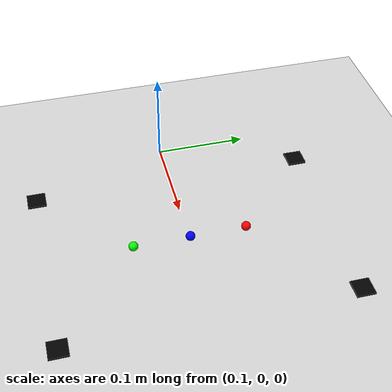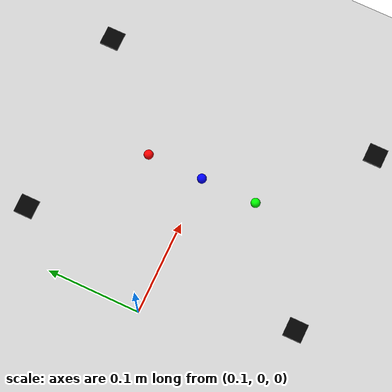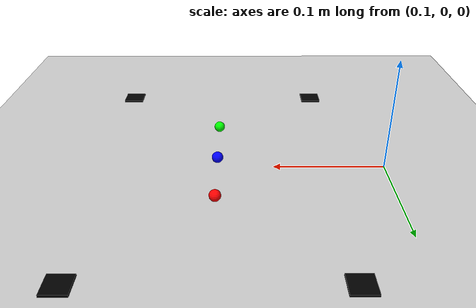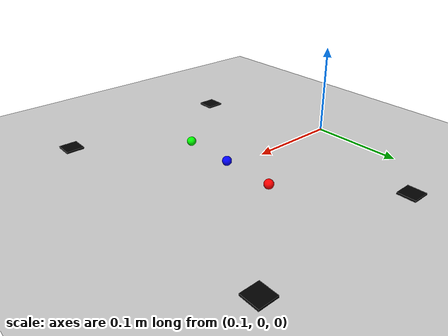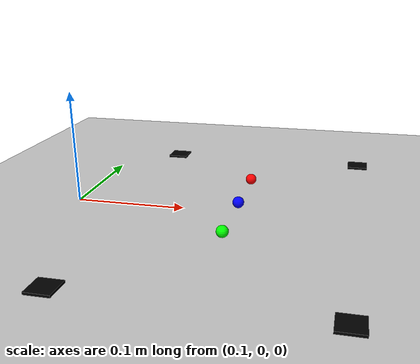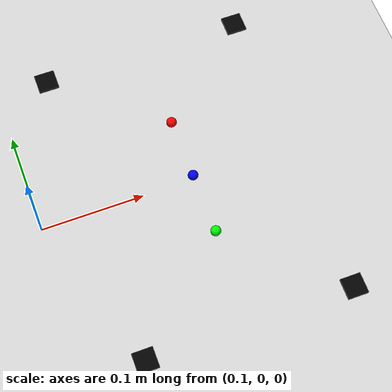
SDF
<sdf version='1.10'>
  <world name='empty'>
    <physics name='1ms' type='ignored'>
      <max_step_size>0.001</max_step_size>
      <real_time_factor>1</real_time_factor>
      <real_time_update_rate>1000</real_time_update_rate>
    </physics>
    <plugin
        filename="gz-sim-physics-system"
        name="gz::sim::systems::Physics">
    </plugin>
    <plugin
        filename="gz-sim-user-commands-system"
        name="gz::sim::systems::UserCommands">
    </plugin>
    <plugin
        filename="gz-sim-scene-broadcaster-system"
        name="gz::sim::systems::SceneBroadcaster">
    </plugin>
    <plugin
        filename="gz-sim-sensors-system"
        name="gz::sim::systems::Sensors">
    </plugin>
    <plugin
        filename="gz-sim-imu-system"
        name="gz::sim::systems::Imu">
    </plugin>
    <plugin filename="gz-sim-vacuum-gripper-system" name="gz::sim::systems::VacuumGripper">
      <parent_link>end_effector</parent_link>
      <grip_count>3</grip_count>
      <max_velocity>0.5</max_velocity>
    </plugin>
    <gravity>0 0 -9.8000000000000007</gravity>
    <magnetic_field>5.5644999999999998e-06 2.2875799999999999e-05 -4.2388400000000002e-05</magnetic_field>
    <atmosphere type='adiabatic'/>
    <scene>
      <ambient>0.400000006 0.400000006 0.400000006 1</ambient>
      <background>0.699999988 0.699999988 0.699999988 1</background>
      <shadows>true</shadows>
    </scene>
    <model name='ground_plane'>
      <static>true</static>
      <link name='link'>
        <collision name='collision'>
          <geometry>
            <plane>
              <normal>0 0 1</normal>
              <size>100 100</size>
            </plane>
          </geometry>
          <surface>
            <friction>
              <ode/>
            </friction>
            <bounce/>
            <contact/>
          </surface>
        </collision>
        <visual name='visual'>
          <geometry>
            <plane>
              <normal>0 0 1</normal>
              <size>100 100</size>
            </plane>
          </geometry>
          <material>
            <ambient>0.800000012 0.800000012 0.800000012 1</ambient>
            <diffuse>0.800000012 0.800000012 0.800000012 1</diffuse>
            <specular>0.800000012 0.800000012 0.800000012 1</specular>
          </material>
        </visual>
        <pose>0 0 0 0 0 0</pose>
        <inertial>
          <pose>0 0 0 0 0 0</pose>
          <mass>1</mass>
          <inertia>
            <ixx>1</ixx>
            <ixy>0</ixy>
            <ixz>0</ixz>
            <iyy>1</iyy>
            <iyz>0</iyz>
            <izz>1</izz>
          </inertia>
        </inertial>
        <enable_wind>false</enable_wind>
      </link>
      <pose>0 0 0 0 0 0</pose>
      <self_collide>false</self_collide>
    </model>
    <light name='sun' type='directional'>
      <pose>0 0 10 0 0 0</pose>
      <cast_shadows>true</cast_shadows>
      <intensity>1</intensity>
      <direction>-0.5 0.10000000000000001 -0.90000000000000002</direction>
      <diffuse>0.800000012 0.800000012 0.800000012 1</diffuse>
      <specular>0.200000003 0.200000003 0.200000003 1</specular>
      <attenuation>
        <range>1000</range>
        <linear>0.01</linear>
        <constant>0.90000000000000002</constant>
        <quadratic>0.001</quadratic>
      </attenuation>
      <spot>
        <inner_angle>0</inner_angle>
        <outer_angle>0</outer_angle>
        <falloff>0</falloff>
      </spot>
    </light>

    <model name='sphere_red'>
      <pose>0.25 0.06 0.010 0 0 0</pose>
      <static>false</static> <link name='link'>
        <inertial>
          <mass>0.002</mass> <inertia>
            <ixx>0.00000008</ixx>
            <ixy>0.0</ixy>
            <ixz>0.0</ixz>
            <iyy>0.00000008</iyy>
            <iyz>0.0</iyz>
            <izz>0.00000008</izz>
          </inertia>
        </inertial>
        <visual name='visual'>
          <geometry>
            <sphere><radius>0.005</radius></sphere>
          </geometry>
          <material>
            <ambient>1 0 0 1</ambient>
            <diffuse>1 0 0 1</diffuse>
          </material>
        </visual>
        <collision name='collision'>
          <geometry>
            <sphere><radius>0.005</radius></sphere>
          </geometry>
        </collision>
      </link>
    </model>

    <model name='sphere_blue'>
      <pose>0.25 0.0 0.010 0 0 0</pose>
      <static>false</static> <link name='link'>
        <inertial>
          <mass>0.002</mass> <inertia>
            <ixx>0.00000008</ixx>
            <ixy>0.0</ixy>
            <ixz>0.0</ixz>
            <iyy>0.00000008</iyy>
            <iyz>0.0</iyz>
            <izz>0.00000008</izz>
          </inertia>
        </inertial>
        <visual name='visual'>
          <geometry>
            <sphere><radius>0.005</radius></sphere>
          </geometry>
          <material>
            <ambient>0 0 1 1</ambient>
            <diffuse>0 0 1 1</diffuse>
          </material>
        </visual>
        <collision name='collision'>
          <geometry>
            <sphere><radius>0.005</radius></sphere>
          </geometry>
        </collision>
      </link>
    </model>

    <model name='sphere_green'>
      <pose>0.25 -0.06 0.010 0 0 0</pose>
      <static>false</static> <link name='link'>
        <inertial>
          <mass>0.002</mass> <inertia>
            <ixx>0.00000008</ixx>
            <ixy>0.0</ixy>
            <ixz>0.0</ixz>
            <iyy>0.00000008</iyy>
            <iyz>0.0</iyz>
            <izz>0.00000008</izz>
          </inertia>
        </inertial>
        <visual name='visual'>
          <geometry>
            <sphere><radius>0.005</radius></sphere>
          </geometry>
          <material>
            <ambient>0 1 0 1</ambient>
            <diffuse>0 1 0 1</diffuse>
          </material>
        </visual>
        <collision name='collision'>
          <geometry>
            <sphere><radius>0.005</radius></sphere>
          </geometry>
        </collision>
      </link>
    </model>

    <model name='calib_marker_1'>
      <pose>0.35 0.15 0.001 0 0 0</pose> <static>true</static>
      <link name='link'>
        <visual name='visual'>
          <geometry>
            <box><size>0.02 0.02 0.002</size></box> </geometry>
          <material>
            <ambient>0 0 0 1</ambient> <diffuse>0 0 0 1</diffuse>
          </material>
        </visual>
      </link>
    </model>

    <model name='calib_marker_2'>
      <pose>0.35 -0.15 0.001 0 0 0</pose>
      <static>true</static>
      <link name='link'>
        <visual name='visual'>
          <geometry>
            <box><size>0.02 0.02 0.002</size></box>
          </geometry>
          <material>
            <ambient>0 0 0 1</ambient>
            <diffuse>0 0 0 1</diffuse>
          </material>
        </visual>
      </link>
    </model>

    <model name='calib_marker_3'>
      <pose>0.15 -0.15 0.001 0 0 0</pose>
      <static>true</static>
      <link name='link'>
        <visual name='visual'>
          <geometry>
            <box><size>0.02 0.02 0.002</size></box>
          </geometry>
          <material>
            <ambient>0 0 0 1</ambient>
            <diffuse>0 0 0 1</diffuse>
          </material>
        </visual>
      </link>
    </model>

    <model name='calib_marker_4'>
      <pose>0.15 0.15 0.001 0 0 0</pose>
      <static>true</static>
      <link name='link'>
        <visual name='visual'>
          <geometry>
            <box><size>0.02 0.02 0.002</size></box>
          </geometry>
          <material>
            <ambient>0 0 0 1</ambient>
            <diffuse>0 0 0 1</diffuse>
          </material>
        </visual>
      </link>
    </model>

  </world>
</sdf>
